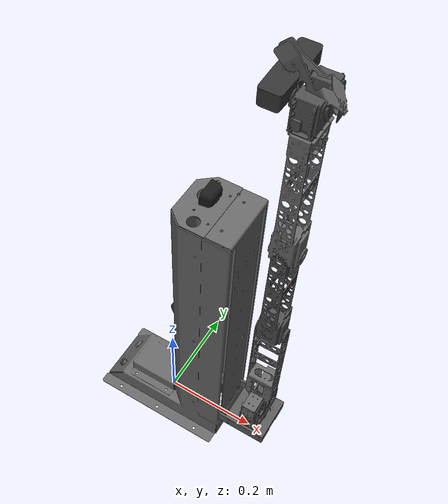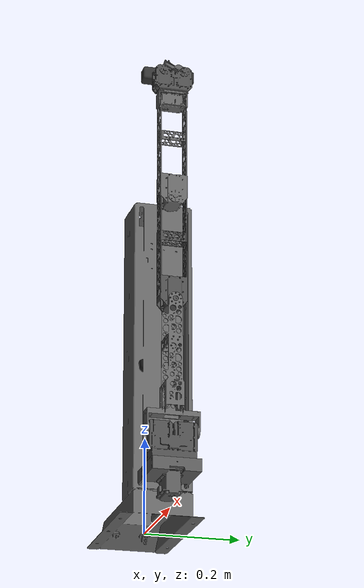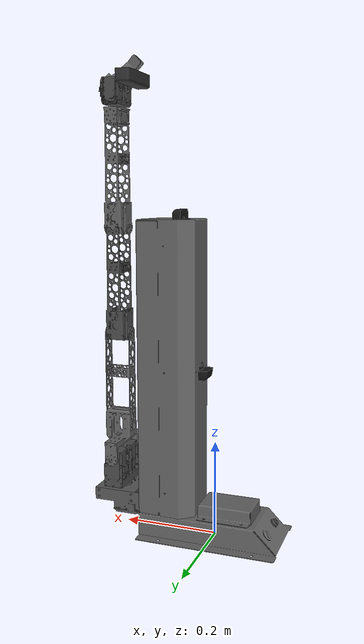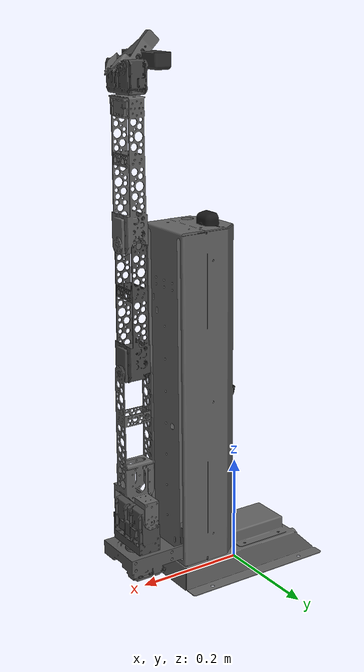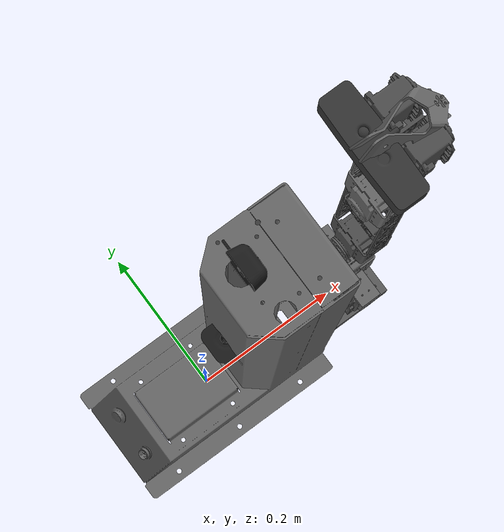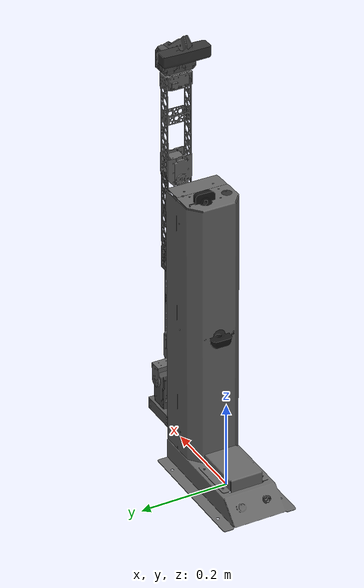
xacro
<robot xmlns:xacro="http://www.ros.org/wiki/xacro" name="komodo">
	<!--      LOAD MODEL     -->
	<xacro:include filename="$(find robotican_description)/robot_arms/dynamixel_arm/arm.xacro" />
	<!--         END         -->

	<!-- Load ALL THE LINKS  -->

	<link name="Arm_base_link">
		<inertial>
			<origin rpy="0 0 0" xyz="0.0787832367713514 1.63894955207658E-05 0.30372182598738" />
			<mass value="5.82785061945851" />
			<inertia ixx="0.262040399352781" ixy="-1.20613586206922E-05" ixz="0.0219696026578" iyy="0.271705564666912" iyz="3.10612186063073E-05" izz="0.0337682852586326" />
		</inertial>
		<visual>
			<origin rpy="0 0 0" xyz="0 0 0" />
			<geometry>
				<mesh filename="package://robotican_description/komodo/meshes/Arm_base_elevator_link.STL" />
			</geometry>
			<material name="">
				<color rgba="0.4 0.4 0.4 1" />
			</material>
		</visual>
		<collision>
			<origin rpy="0 0 0" xyz="0 0 0" />
			<geometry>
				<mesh filename="package://robotican_description/komodo/meshes/Arm_base_elevator_link.STL" />
			</geometry>
		</collision>
	  </link>

	<link name="Creative_Camera_link">
		<inertial>
			<origin rpy="0 0 0" xyz="0.000246466472824558 6.40214461760665E-06 -3.77569804070194E-05" />
			<mass value="0.0917411732955106" />
			<inertia ixx="9.42830385924344E-05" ixy="7.20275321596364E-09" ixz="-9.53710985095244E-09" iyy="1.31046061468615E-05" iyz="2.49172946580444E-11" izz="9.18985906934582E-05" />
		</inertial>
		<visual>
			<origin rpy="0 0 0" xyz="0 0 0" />
			<geometry>
				<mesh filename="package://robotican_description/komodo/meshes/Creative_Camera_link.STL" />
			</geometry>
			<material name="">
				<color rgba="0.2 0.2 0.2 1" />
			</material>
		</visual>
		<collision>
			<origin rpy="0 0 0" xyz="0 0 0" />
			<geometry>
				<mesh filename="package://robotican_description/komodo/meshes/Creative_Camera_link.STL" />
			</geometry>
		</collision>
	</link>

	<link name="elevator_link">
		<inertial>
			<origin rpy="0 0 0" xyz="0.0954671716579415 1.91586249009607E-06 -0.0185743175743276" />
			<mass value="1.09057945344451" />
			<inertia ixx="0.000835857275985966" ixy="5.81870910353681E-08" ixz="-3.13493979506258E-05" iyy="0.00128840659932805" iyz="1.45397132642805E-07" izz="0.00136461371089342" />
		</inertial>
		<visual>
			<origin rpy="0 0 0" xyz="0 0 0" />
			<geometry>
				<mesh filename="package://robotican_description/komodo/meshes/elevator_link.STL" />
			</geometry>
			<material name="">
				<color rgba="0.35 0.35 0.35 1" />
			</material>
		</visual>
		<collision>
			<origin rpy="0 0 0" xyz="0 0 0" />
			<geometry>
				<mesh filename="package://robotican_description/komodo/meshes/elevator_link.STL" />
			</geometry>
		</collision>
	</link>

	<link name="Rear_Camera_link">
		<inertial>
			<origin rpy="0 0 0" xyz="3.63553471786722E-06 0.000213443852905448 -0.00979905092954501" />
			<mass value="0.0346828331927957" />
			<inertia ixx="6.28790547336403E-06" ixy="-2.06834495042828E-09" ixz="1.17994816083997E-09" iyy="6.08020816375982E-06" iyz="3.61787794070637E-08" izz="9.95214453956502E-06" />
		</inertial>
		<visual>
			<origin rpy="0 0 0" xyz="0 0 0" />
			<geometry>
				<mesh filename="package://robotican_description/komodo/meshes/Rear_Camera_link.STL" />
			</geometry>
			<material name="">
				<color rgba="0.1 0.1 0.1 1" />
			</material>
		</visual>
		<collision>
			<origin rpy="0 0 0" xyz="0 0 0" />
			<geometry>
				<mesh filename="package://robotican_description/komodo/meshes/Rear_Camera_link.STL" />
			</geometry>
		</collision>
	</link>

	<link name="Top_Camera_link">
		<inertial>
			<origin rpy="0 0 0" xyz="4.37351127445876E-06 0.000213430006923504 -0.00979905092954436" />
			<mass value="0.0346828331927942" />
			<inertia ixx="6.28791729321072E-06" ixy="-1.35017062474835E-09" ixz="1.30503198120059E-09" iyy="6.08019634391293E-06" iyz="3.61744833904195E-08" izz="9.95214453956468E-06" />
		</inertial>
		<visual>
			<origin rpy="0 0 0" xyz="0 0 0" />
			<geometry>
				<mesh filename="package://robotican_description/komodo/meshes/Top_Camera_link.STL" />
			</geometry>
			<material name="">
				<color rgba="0.1 0.1 0.1 1" />
			</material>
		</visual>
		<collision>
			<origin rpy="0 0 0" xyz="0 0 0" />
			<geometry>
				<mesh filename="package://robotican_description/komodo/meshes/Top_Camera_link.STL" />
			</geometry>
		</collision>
	</link>

	<!--         END         -->

	<!-- Load ALL THE JOINTS -->

	<joint name="base_rotation_joint" type="revolute">
		<origin xyz="0.113 0 -0.00400000000000003" rpy="0 0 -3.14" />
		<parent link="elevator_link" />
		<child link="base_rotation_link" />
		<axis xyz="0 0 1" />
		<limit lower="-1.57079" upper="1.57079" effort="10" velocity="0" />
	</joint>

	<joint name="elevator_joint" type="prismatic">
		<origin xyz="0.101457996026178 0 0.0740000000000002" rpy="0 0 0" />
		<parent link="Arm_base_link" />
		<child link="elevator_link" />
		<axis xyz="0 0 1" />
		<dynamics damping="1000.0" friction="100000.0"/>
		<limit lower="0" upper="0.50" effort="100" velocity="0.2" />
	</joint>

	<joint name="Creative_Camera_joint" type="fixed">
		<origin xyz="0.037 0 0.052" rpy="0.0 -1.57 3.14" />
		<parent link="wrist_link" />
		<child link="Creative_Camera_link" />
		<axis xyz="0 0 1" />
	</joint>

	<joint name="Rear_Camera_joint" type="fixed">
		<origin xyz="0.0329579960261737 0 0.354500000000001" rpy="0 0 -3.15" />
		<parent link="Arm_base_link" />
		<child link="Rear_Camera_link" />
		<axis xyz="0 0 0" />
	</joint>

	<joint name="Top_Camera_joint" type="fixed">
		<origin xyz="0.0622079960261761 0.0152829991418538 0.660000000000001" rpy="0 -1.57 0" />
		<parent link="Arm_base_link" />
		<child link="Top_Camera_link" />
		<axis xyz="0 0 0" />
	</joint>

	<!--         END         -->
</robot>

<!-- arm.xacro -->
<robot name="dynamixel_arm">

	<!-- Load all the links  -->

	<link name="base_rotation_link">
    		<inertial>
      			<origin rpy="0 0 0" xyz="-1.11022302462516E-16 -7.80223872637444E-17 0.0660708417371112" />
      			<mass value="1.4054258533062" />
      			<inertia ixx="0.00159425912810341" ixy="-8.40269196653518E-08" ixz="-1.60925604895535E-19" iyy="0.000605522001732049" iyz="-6.08768470792684E-19" izz="0.00123388334665811" />
    		</inertial>
    		<visual>
      			<origin rpy="0 0 0" xyz="0 0 0" />
      			<geometry>
        			<mesh filename="package://robotican_description/komodo/meshes/base_rotation_link.STL" />
      			</geometry>
      			<material name="">
        			<color rgba="0.3 0.3 0.3 1" />
			</material>
    		</visual>
    		<collision>
      			<origin rpy="0 0 0" xyz="0 0 0" />
      			<geometry>
        			<mesh filename="package://robotican_description/komodo/meshes/base_rotation_link.STL" />
      			</geometry>
    		</collision>
  	</link>

	<link name="elbow1_link">
    		<inertial>
      			<origin rpy="0 0 0" xyz="3.38561240652013E-05 2.66604610292575E-06 0.0239321015909688" />
			<mass value="0.759959116000226" />
      			<inertia ixx="0.0011156254663426" ixy="3.16193221175592E-07" ixz="2.89169705133133E-06" iyy="0.00114606034071406" iyz="-8.11914906919631E-08" izz="0.000237163435713384" />
    		</inertial>
    		<visual>
      			<origin rpy="0 0 0" xyz="0 0 0" />
			<geometry>
        			<mesh filename="package://robotican_description/komodo/meshes/elbow1_link.STL" />
      			</geometry>
			<material name="">
        			<color rgba="0.3 0.3 0.3 1" />
      			</material>
    		</visual>
    		<collision>
      			<origin rpy="0 0 0" xyz="0 0 0" />
      			<geometry>
        			<mesh filename="package://robotican_description/komodo/meshes/elbow1_link.STL" />
      			</geometry>
    		</collision>
  	</link>

	<link name="elbow2_link">
    		<inertial>
      			<origin rpy="0 0 0" xyz="-2.29085121194481E-05 -0.000512185919169572 0.0885118786028204" />
      			<mass value="1.12138857800426" />
      			<inertia ixx="0.0110599202589784" ixy="3.04261287700186E-07" ixz="-1.22468079415109E-06" iyy="0.0110437302875007" iyz="-7.91547787630536E-05" izz="0.000331598270284794" />
    		</inertial>
    		<visual>
      			<origin rpy="0 0 0" xyz="0 0 0" />
      			<geometry>
        			<mesh filename="package://robotican_description/komodo/meshes/elbow2_link.STL" />
      			</geometry>
      			<material name="">
        			<color rgba="0.4 0.4 0.4 1" />
      			</material>
    		</visual>
    		<collision>
      			<origin rpy="0 0 0" xyz="0 0 0" />
      			<geometry>
        			<mesh filename="package://robotican_description/komodo/meshes/elbow2_link.STL" />
      			</geometry>
    		</collision>
  	</link>

	<link name="left_finger_link">
    		<inertial>
      			<origin rpy="0 0 0" xyz="-6.10622663543836E-16 0.0205697573116852 0.0301832532936965" />
      			<mass value="0.0111981711598485" />
      			<inertia ixx="9.77349829713274E-06" ixy="6.1354405537333E-20" ixz="3.95573177730842E-20" iyy="1.11277552627936E-05" iyz="2.19026618569787E-06" izz="3.8860219521149E-06" />
    		</inertial>
    		<visual>
      			<origin rpy="0.185 0 0" xyz="0 0 0" />
      			<geometry>
        			<mesh filename="package://robotican_description/komodo/meshes/left_finger_link.STL" />
      			</geometry>
      			<material name="">
        			<color rgba="0.4 0.4 0.4 1" />
      			</material>
    		</visual>
    		<collision>
      			<origin rpy="0 0 0" xyz="0 0 0" />
      			<geometry>
        			<mesh filename="package://robotican_description/komodo/meshes/left_finger_link.STL" />
      			</geometry>
    		</collision>
	</link>

	<link name="right_finger_link">
    		<inertial>
      			<origin rpy="0 0 0" xyz="2.77555756156289E-16 -0.0205697573116854 0.0301832532936965" />
      			<mass value="0.0111981711598485" />
      			<inertia ixx="9.7734982971327E-06" ixy="1.80407068651258E-20" ixz="2.78908224261042E-20" iyy="1.11277552627935E-05" iyz="-2.19026618569788E-06" izz="3.88602195211489E-06" />
    		</inertial>
    		<visual>
      			<origin rpy="-0.185 0 0" xyz="0 0 0" />
      			<geometry>
        			<mesh filename="package://robotican_description/komodo/meshes/right_finger_link.STL" />
      			</geometry>
     	 		<material name="">
        			<color rgba="0.4 0.4 0.4 1" />
      			</material>
    		</visual>
    		<collision>
      			<origin rpy="0 0 0" xyz="0 0 0" />
      			<geometry>
        			<mesh filename="package://robotican_description/komodo/meshes/right_finger_link.STL" />
      			</geometry>
    		</collision>
  	</link>

	<link name="shoulder_link">
    		<inertial>
      			<origin rpy="0 0 0" xyz="-4.66231481405233E-06 -9.82289126283389E-05 0.0772888499682157" />
      			<mass value="0.191480823048406" />
      			<inertia ixx="0.00107301595696304" ixy="-2.9789063890745E-07" ixz="-2.01216953964121E-08" iyy="0.000975953125213584" iyz="-1.19601921452086E-06" izz="0.000217659789393094" />
    		</inertial>
    		<visual>
      			<origin rpy="0 0 0" xyz="0 0 0" />
      			<geometry>
        			<mesh filename="package://robotican_description/komodo/meshes/shoulder_link.STL" />
      			</geometry>
      			<material name="">
        			<color rgba="0.4 0.4 0.4 1" />
      			</material>
    		</visual>
    		<collision>
      			<origin rpy="0 0 0" xyz="0 0 0" />
      			<geometry>
        			<mesh filename="package://robotican_description/komodo/meshes/shoulder_link.STL" />
      			</geometry>
    		</collision>
  	</link>

	<link name="wrist_link">
    		<inertial>
      			<origin rpy="0 0 0" xyz="-0.000140374211043626 4.00707618562063E-10 0.0303673809619358" />
      			<mass value="0.717337417215465" />
      			<inertia ixx="0.000486392340366094" ixy="4.20757000035677E-12" ixz="-3.91843889020299E-06" iyy="0.000211170064630335" iyz="2.79335159568522E-12" izz="0.000437528795624211" />
    		</inertial>
    		<visual>
      			<origin rpy="0 0 0" xyz="0 0 0" />
      			<geometry>
        			<mesh filename="package://robotican_description/komodo/meshes/wrist_link.STL" />
      			</geometry>
      			<material name="">
        			<color rgba="0.3 0.3 0.3 1" />
      			</material>
    		</visual>
    		<collision>
      			<origin rpy="0 0 0" xyz="0 0 0" />
      			<geometry>
        			<mesh filename="package://robotican_description/komodo/meshes/wrist_link.STL" />
      			</geometry>
    		</collision>
  	</link>
	<!--         END         -->

	<!-- Load all the joints -->

	<joint name="shoulder_joint" type="revolute">
    		<origin xyz="0 0 0.0834999999999999" rpy="-4.20159904047482E-15 -5.97509793174248E-16 9.93431320775303E-15" />
    		<parent link="base_rotation_link" />
    		<child link="shoulder_link" />
    		<axis xyz="0 1 0" />
    		<limit lower="-1.692969" upper="1.692969" effort="2000" velocity="0" />
  	</joint>

	<joint name="elbow1_joint" type="revolute">
    		<origin xyz="0 -0.000251155668932789 0.266305434894181" rpy="1.44504380352115E-15 1.11628850952447E-06 -9.93431159466724E-15" />
    		<parent link="shoulder_link" />
    		<child link="elbow1_link" />
    		<axis xyz="-0.999999999998754 0 0" />
    		<limit lower="-2.4434" upper="2.4434" effort="100" velocity="0" />
  	</joint>

	<joint name="elbow2_joint" type="revolute">
    		<origin xyz="0 0 0.223999999999899" rpy="-4.51048856041191E-16 3.35869632765754E-16 1.57079632687657" />
    		<parent link="elbow1_link" />
    		<child link="elbow2_link" />
    		<axis xyz="1 0 0" />
    		<limit lower="-2.4434" upper="2.4434" effort="10" velocity="0" />
  	</joint>

	<joint name="wrist_joint" type="revolute">
    		<origin xyz="0 0.0 0.244749999999997" rpy="-4.43972025628984E-16 -3.35842401421639E-15 -1.57079632687657" />
    		<parent link="elbow2_link" />
    		<child link="wrist_link" />
    		<axis xyz="0 0 0.999999999998754" />
    		<limit lower="-1.91986" upper="1.91986" effort="10" velocity="0" />
  	</joint>

	<joint name="left_finger_joint" type="revolute">
    		<origin xyz="-0.000250000000000111 0.021 0.0422500000000001" rpy="2.85979682697881E-15 1.01870746742143E-16 3.19235832636806E-21" />
    		<parent link="wrist_link" />
   		<child link="left_finger_link" />
    		<axis xyz="1 0 0" />
    		<limit lower="-0.87266" upper="0.87266" effort="10" velocity="0" />
  	</joint>

	<joint name="right_finger_joint" type="revolute">
    		<origin xyz="-0.00024999999999889 -0.021 0.0422499999999999" rpy="0 3.19686557214722E-37 0" />
    		<parent link="wrist_link" />
    		<child link="right_finger_link" />
    		<axis xyz="1 0 0" />
    		<limit lower="-0.87266" upper="0.87266" effort="10" velocity="0" />
  	</joint>

	<!--         END         -->

</robot>
